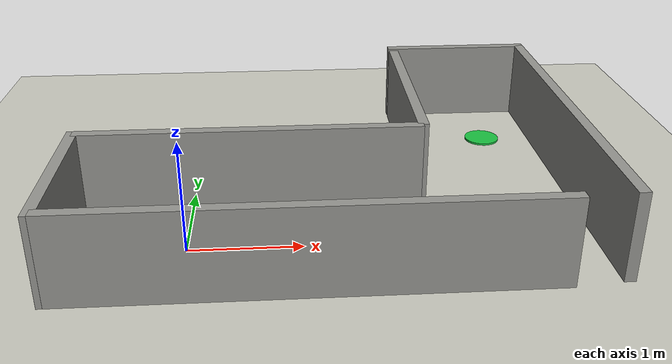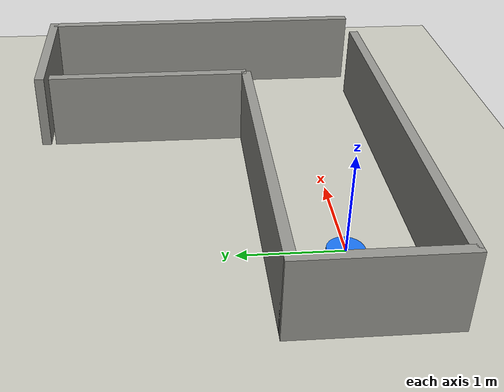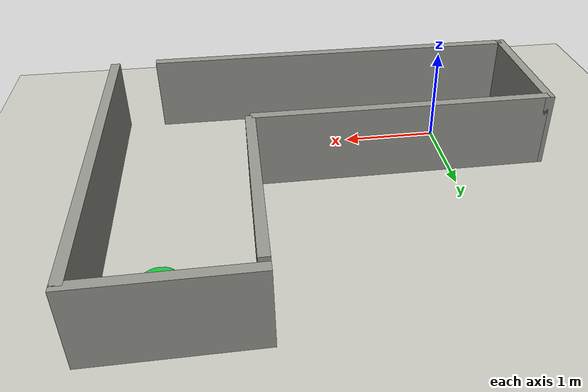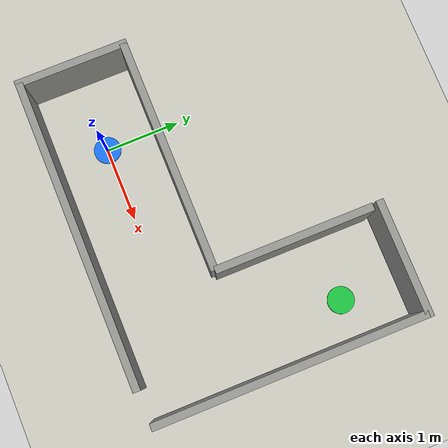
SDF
<?xml version="1.0"?>
<sdf version="1.6">
    <world name="dynamic_indoor_crossing_static">

        <plugin filename="gz-sim-physics-system" name="gz::sim::systems::Physics" />
        <plugin filename="gz-sim-user-commands-system" name="gz::sim::systems::UserCommands" />
        <plugin filename="gz-sim-scene-broadcaster-system" name="gz::sim::systems::SceneBroadcaster" />
        <plugin filename="gz-sim-sensors-system" name="gz::sim::systems::Sensors">
            <render_engine>ogre2</render_engine>
        </plugin>
        <plugin filename="gz-sim-imu-system" name="gz::sim::systems::Imu" />

        <light type="directional" name="sun">
            <cast_shadows>true</cast_shadows>
            <pose>0 0 10 0 0 0</pose>
            <diffuse>0.8 0.8 0.8 1</diffuse>
            <specular>0.2 0.2 0.2 1</specular>
            <attenuation>
                <range>1000</range>
                <constant>0.9</constant>
                <linear>0.01</linear>
                <quadratic>0.001</quadratic>
            </attenuation>
            <direction>-0.5 0.1 -0.9</direction>
        </light>

        <model name="ground_plane">
            <static>true</static>
            <link name="link">
                <collision name="collision">
                    <geometry><plane><normal>0 0 1</normal></plane></geometry>
                </collision>
                <visual name="visual">
                    <geometry><plane><normal>0 0 1</normal><size>100 100</size></plane></geometry>
                    <material>
                        <ambient>0.78 0.78 0.74 1</ambient>
                        <diffuse>0.78 0.78 0.74 1</diffuse>
                    </material>
                </visual>
            </link>
        </model>

        <!-- L-shaped indoor corridor. Free corridor is roughly 1.3 m wide. -->
        <model name="wall_south"><static>true</static><pose>1.05 -0.70 0.40 0 0 0</pose><link name="link">
            <collision name="collision"><geometry><box><size>4.10 0.10 0.80</size></box></geometry></collision>
            <visual name="visual"><geometry><box><size>4.10 0.10 0.80</size></box></geometry>
                <material><ambient>0.58 0.58 0.56 1</ambient><diffuse>0.58 0.58 0.56 1</diffuse></material></visual>
        </link></model>

        <model name="wall_north_straight"><static>true</static><pose>0.55 0.70 0.40 0 0 0</pose><link name="link">
            <collision name="collision"><geometry><box><size>3.10 0.10 0.80</size></box></geometry></collision>
            <visual name="visual"><geometry><box><size>3.10 0.10 0.80</size></box></geometry>
                <material><ambient>0.58 0.58 0.56 1</ambient><diffuse>0.58 0.58 0.56 1</diffuse></material></visual>
        </link></model>

        <model name="wall_west"><static>true</static><pose>-1.00 0 0.40 0 0 0</pose><link name="link">
            <collision name="collision"><geometry><box><size>0.10 1.50 0.80</size></box></geometry></collision>
            <visual name="visual"><geometry><box><size>0.10 1.50 0.80</size></box></geometry>
                <material><ambient>0.58 0.58 0.56 1</ambient><diffuse>0.58 0.58 0.56 1</diffuse></material></visual>
        </link></model>

        <model name="wall_inner_corner"><static>true</static><pose>2.10 1.75 0.40 0 0 0</pose><link name="link">
            <collision name="collision"><geometry><box><size>0.10 2.10 0.80</size></box></geometry></collision>
            <visual name="visual"><geometry><box><size>0.10 2.10 0.80</size></box></geometry>
                <material><ambient>0.58 0.58 0.56 1</ambient><diffuse>0.58 0.58 0.56 1</diffuse></material></visual>
        </link></model>

        <model name="wall_outer_corner"><static>true</static><pose>3.55 1.10 0.40 0 0 0</pose><link name="link">
            <collision name="collision"><geometry><box><size>0.10 3.60 0.80</size></box></geometry></collision>
            <visual name="visual"><geometry><box><size>0.10 3.60 0.80</size></box></geometry>
                <material><ambient>0.58 0.58 0.56 1</ambient><diffuse>0.58 0.58 0.56 1</diffuse></material></visual>
        </link></model>

        <model name="wall_goal_end"><static>true</static><pose>2.825 2.90 0.40 0 0 0</pose><link name="link">
            <collision name="collision"><geometry><box><size>1.55 0.10 0.80</size></box></geometry></collision>
            <visual name="visual"><geometry><box><size>1.55 0.10 0.80</size></box></geometry>
                <material><ambient>0.58 0.58 0.56 1</ambient><diffuse>0.58 0.58 0.56 1</diffuse></material></visual>
        </link></model>

        <!-- Visual-only start and goal markers. They have no collision and do not affect lidar. -->
        <model name="start_marker">
            <static>true</static>
            <pose>0 0 0.01 0 0 0</pose>
            <link name="link">
                <visual name="visual">
                    <geometry><cylinder><radius>0.18</radius><length>0.02</length></cylinder></geometry>
                    <material><ambient>0.1 0.45 0.95 1</ambient><diffuse>0.1 0.45 0.95 1</diffuse></material>
                </visual>
            </link>
        </model>

        <model name="goal_marker">
            <static>true</static>
            <pose>3.0 2.1 0.01 0 0 0</pose>
            <link name="link">
                <visual name="visual">
                    <geometry><cylinder><radius>0.18</radius><length>0.02</length></cylinder></geometry>
                    <material><ambient>0.1 0.75 0.25 1</ambient><diffuse>0.1 0.75 0.25 1</diffuse></material>
                </visual>
            </link>
        </model>

    </world>
</sdf>
